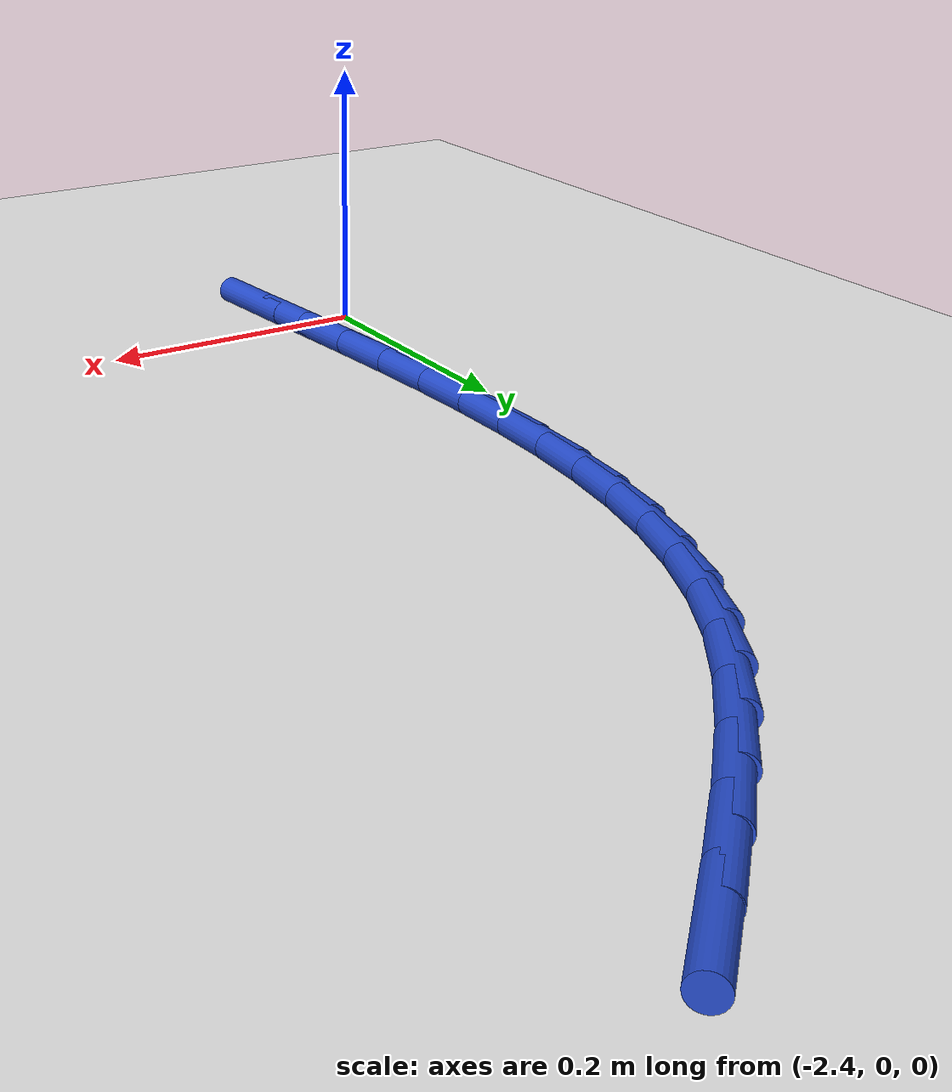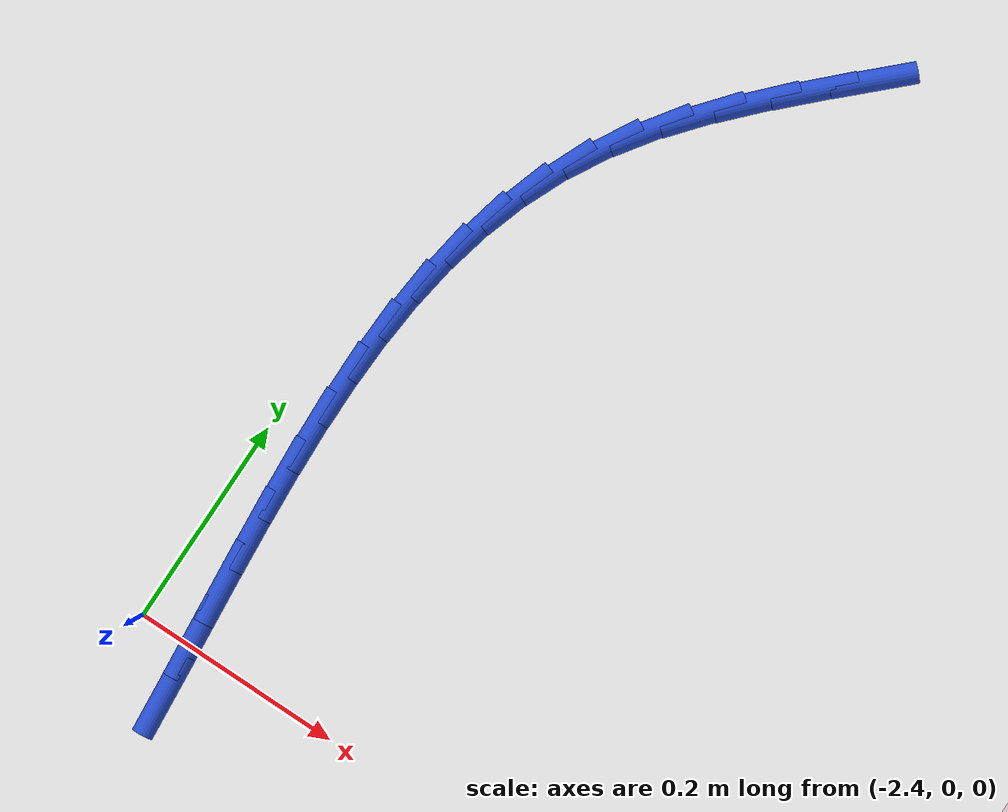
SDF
<sdf version="1.6">
 <world name="default">
  <model name="ground_plane">
   <static>1</static>
   <link name="link">
    <collision name="collision">
     <geometry><plane><normal>0 0 1</normal><size>100 100</size></plane></geometry>
     <surface><friction><ode><mu>100</mu><mu2>50</mu2></ode></friction></surface>
    </collision>
    <visual name="visual">
     <cast_shadows>0</cast_shadows>
     <geometry><plane><normal>0 0 1</normal><size>100 100</size></plane></geometry>
     <material>
      <script><uri>file://media/materials/scripts/gazebo.material</uri><name>Gazebo/WhiteGlow</name></script>
     </material>
    </visual>
   </link>
  </model>
  <model name="line">
   <link name="link_55">
    <pose>-2.125640570467786 0.7555206711204957 0.01 0 1.57 0.7670903801759016</pose>
    <collision name="collision">
     <geometry><cylinder><radius>0.01</radius><length>0.08</length></cylinder></geometry>
    </collision>
    <visual name="visual">
     <material>
      <script><name>Gazebo/Blue</name><uri>file://media/materials/scripts/gazebo.material</uri></script>
     </material>
     <geometry><cylinder><radius>0.01</radius><length>0.08</length></cylinder></geometry>
    </visual>
   </link>
   <link name="link_56">
    <pose>-2.1639572938121296 0.7185818636712041 0.01 0 1.57 0.7843512614463876</pose>
    <collision name="collision">
     <geometry><cylinder><radius>0.01</radius><length>0.08</length></cylinder></geometry>
    </collision>
    <visual name="visual">
     <material>
      <script><name>Gazebo/Blue</name><uri>file://media/materials/scripts/gazebo.material</uri></script>
     </material>
     <geometry><cylinder><radius>0.01</radius><length>0.08</length></cylinder></geometry>
    </visual>
   </link>
   <link name="link_57">
    <pose>-2.2004393380752885 0.6821761257972505 0.01 0 1.57 0.8213525761232271</pose>
    <collision name="collision">
     <geometry><cylinder><radius>0.01</radius><length>0.08</length></cylinder></geometry>
    </collision>
    <visual name="visual">
     <material>
      <script><name>Gazebo/Blue</name><uri>file://media/materials/scripts/gazebo.material</uri></script>
     </material>
     <geometry><cylinder><radius>0.01</radius><length>0.08</length></cylinder></geometry>
    </visual>
   </link>
   <link name="link_58">
    <pose>-2.234280985902337 0.645809077216992 0.01 0 1.57 0.880725294211941</pose>
    <collision name="collision">
     <geometry><cylinder><radius>0.01</radius><length>0.08</length></cylinder></geometry>
    </collision>
    <visual name="visual">
     <material>
      <script><name>Gazebo/Blue</name><uri>file://media/materials/scripts/gazebo.material</uri></script>
     </material>
     <geometry><cylinder><radius>0.01</radius><length>0.08</length></cylinder></geometry>
    </visual>
   </link>
   <link name="link_59">
    <pose>-2.2646765199383476 0.6089863376487875 0.01 0 1.57 0.9651259260950774</pose>
    <collision name="collision">
     <geometry><cylinder><radius>0.01</radius><length>0.08</length></cylinder></geometry>
    </collision>
    <visual name="visual">
     <material>
      <script><name>Gazebo/Blue</name><uri>file://media/materials/scripts/gazebo.material</uri></script>
     </material>
     <geometry><cylinder><radius>0.01</radius><length>0.08</length></cylinder></geometry>
    </visual>
   </link>
   <link name="link_60">
    <pose>-2.290831020764267 0.5712177623625896 0.01 0 1.57 1.0654334734665476</pose>
    <collision name="collision">
     <geometry><cylinder><radius>0.01</radius><length>0.08</length></cylinder></geometry>
    </collision>
    <visual name="visual">
     <material>
      <script><name>Gazebo/Blue</name><uri>file://media/materials/scripts/gazebo.material</uri></script>
     </material>
     <geometry><cylinder><radius>0.01</radius><length>0.08</length></cylinder></geometry>
    </visual>
   </link>
   <link name="link_61">
    <pose>-2.3124202223223214 0.5321978230789552 0.01 0 1.57 1.1646446879283325</pose>
    <collision name="collision">
     <geometry><cylinder><radius>0.01</radius><length>0.08</length></cylinder></geometry>
    </collision>
    <visual name="visual">
     <material>
      <script><name>Gazebo/Blue</name><uri>file://media/materials/scripts/gazebo.material</uri></script>
     </material>
     <geometry><cylinder><radius>0.01</radius><length>0.08</length></cylinder></geometry>
    </visual>
   </link>
   <link name="link_62">
    <pose>-2.329762436493547 0.49187304635977436 0.01 0 1.57 1.2583311708363665</pose>
    <collision name="collision">
     <geometry><cylinder><radius>0.01</radius><length>0.08</length></cylinder></geometry>
    </collision>
    <visual name="visual">
     <material>
      <script><name>Gazebo/Blue</name><uri>file://media/materials/scripts/gazebo.material</uri></script>
     </material>
     <geometry><cylinder><radius>0.01</radius><length>0.08</length></cylinder></geometry>
    </visual>
   </link>
   <link name="link_63">
    <pose>-2.343222206417527 0.45020809324033517 0.01 0 1.57 1.3437889629129738</pose>
    <collision name="collision">
     <geometry><cylinder><radius>0.01</radius><length>0.08</length></cylinder></geometry>
    </collision>
    <visual name="visual">
     <material>
      <script><name>Gazebo/Blue</name><uri>file://media/materials/scripts/gazebo.material</uri></script>
     </material>
     <geometry><cylinder><radius>0.01</radius><length>0.08</length></cylinder></geometry>
    </visual>
   </link>
   <link name="link_64">
    <pose>-2.3531640752338396 0.4071676247559247 0.01 0 1.57 1.419249392026891</pose>
    <collision name="collision">
     <geometry><cylinder><radius>0.01</radius><length>0.08</length></cylinder></geometry>
    </collision>
    <visual name="visual">
     <material>
      <script><name>Gazebo/Blue</name><uri>file://media/materials/scripts/gazebo.material</uri></script>
     </material>
     <geometry><cylinder><radius>0.01</radius><length>0.08</length></cylinder></geometry>
    </visual>
   </link>
   <link name="link_65">
    <pose>-2.359952586082067 0.3627163019418299 0.01 0 1.57 1.4838718576488055</pose>
    <collision name="collision">
     <geometry><cylinder><radius>0.01</radius><length>0.08</length></cylinder></geometry>
    </collision>
    <visual name="visual">
     <material>
      <script><name>Gazebo/Blue</name><uri>file://media/materials/scripts/gazebo.material</uri></script>
     </material>
     <geometry><cylinder><radius>0.01</radius><length>0.08</length></cylinder></geometry>
    </visual>
   </link>
   <link name="link_66">
    <pose>-2.3639522821017898 0.31681878583333817 0.01 0 1.57 1.5375570756714296</pose>
    <collision name="collision">
     <geometry><cylinder><radius>0.01</radius><length>0.08</length></cylinder></geometry>
    </collision>
    <visual name="visual">
     <material>
      <script><name>Gazebo/Blue</name><uri>file://media/materials/scripts/gazebo.material</uri></script>
     </material>
     <geometry><cylinder><radius>0.01</radius><length>0.08</length></cylinder></geometry>
    </visual>
   </link>
   <link name="link_67">
    <pose>-2.365527706432588 0.26943973746573613 0.01 0 1.57 -1.5608918524345827</pose>
    <collision name="collision">
     <geometry><cylinder><radius>0.01</radius><length>0.08</length></cylinder></geometry>
    </collision>
    <visual name="visual">
     <material>
      <script><name>Gazebo/Blue</name><uri>file://media/materials/scripts/gazebo.material</uri></script>
     </material>
     <geometry><cylinder><radius>0.01</radius><length>0.08</length></cylinder></geometry>
    </visual>
   </link>
   <link name="link_68">
    <pose>-2.3650434022140434 0.22054381787431207 0.01 0 1.57 -1.5276205901495357</pose>
    <collision name="collision">
     <geometry><cylinder><radius>0.01</radius><length>0.08</length></cylinder></geometry>
    </collision>
    <visual name="visual">
     <material>
      <script><name>Gazebo/Blue</name><uri>file://media/materials/scripts/gazebo.material</uri></script>
     </material>
     <geometry><cylinder><radius>0.01</radius><length>0.08</length></cylinder></geometry>
    </visual>
   </link>
   <link name="link_69">
    <pose>-2.3628639125857345 0.17009568809435252 0.01 0 1.57 -1.5034421122580877</pose>
    <collision name="collision">
     <geometry><cylinder><radius>0.01</radius><length>0.08</length></cylinder></geometry>
    </collision>
    <visual name="visual">
     <material>
      <script><name>Gazebo/Blue</name><uri>file://media/materials/scripts/gazebo.material</uri></script>
     </material>
     <geometry><cylinder><radius>0.01</radius><length>0.08</length></cylinder></geometry>
    </visual>
   </link>
   <link name="link_70">
    <pose>-2.3593537806872447 0.11806000916114494 0.01 0 1.57 -1.4875684090410868</pose>
    <collision name="collision">
     <geometry><cylinder><radius>0.01</radius><length>0.08</length></cylinder></geometry>
    </collision>
    <visual name="visual">
     <material>
      <script><name>Gazebo/Blue</name><uri>file://media/materials/scripts/gazebo.material</uri></script>
     </material>
     <geometry><cylinder><radius>0.01</radius><length>0.08</length></cylinder></geometry>
    </visual>
   </link>
   <link name="link_71">
    <pose>-2.354877549658153 0.06440144210997595 0.01 0 1.57 -1.4792581868829755</pose>
    <collision name="collision">
     <geometry><cylinder><radius>0.01</radius><length>0.08</length></cylinder></geometry>
    </collision>
    <visual name="visual">
     <material>
      <script><name>Gazebo/Blue</name><uri>file://media/materials/scripts/gazebo.material</uri></script>
     </material>
     <geometry><cylinder><radius>0.01</radius><length>0.08</length></cylinder></geometry>
    </visual>
   </link>
   <link name="link_72">
    <pose>-2.34979976263804 0.009084647976133689 0.01 0 1.57 -1.477839839660909</pose>
    <collision name="collision">
     <geometry><cylinder><radius>0.01</radius><length>0.08</length></cylinder></geometry>
    </collision>
    <visual name="visual">
     <material>
      <script><name>Gazebo/Blue</name><uri>file://media/materials/scripts/gazebo.material</uri></script>
     </material>
     <geometry><cylinder><radius>0.01</radius><length>0.08</length></cylinder></geometry>
    </visual>
   </link>
   <link name="link_73">
    <pose>-2.3444849627664874 -0.047925712205095033 0.01 0 1.57 -1.4827147392802746</pose>
    <collision name="collision">
     <geometry><cylinder><radius>0.01</radius><length>0.08</length></cylinder></geometry>
    </collision>
    <visual name="visual">
     <material>
      <script><name>Gazebo/Blue</name><uri>file://media/materials/scripts/gazebo.material</uri></script>
     </material>
     <geometry><cylinder><radius>0.01</radius><length>0.08</length></cylinder></geometry>
    </visual>
   </link>
  </model>
 </world>
</sdf>
